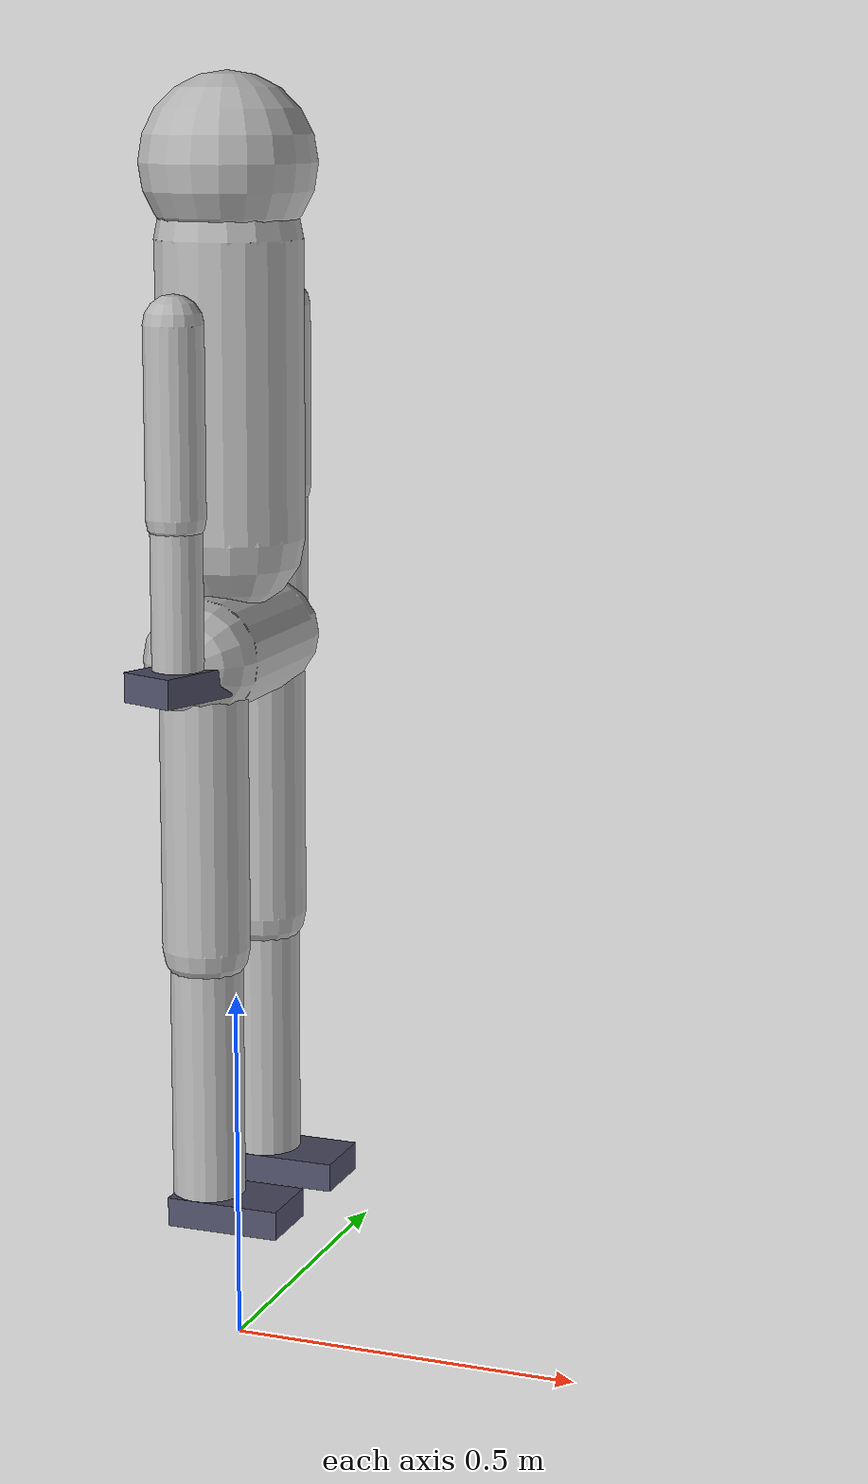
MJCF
<mujoco model="humanoid_simplified">
  <!-- 简化人形机器人模型 -->
  <!-- 适用于基本步态和平衡测试 -->

  <compiler angle="degree" coordinate="local" inertiafromgeom="true"/>

  <option timestep="0.001" gravity="0 0 -9.81" iterations="50"/>

  <asset>
    <!-- 人形机器人材质 -->
    <material name="robot_body" rgba="0.7 0.7 0.7 1"
              specular="0.4" shininess="0.2"/>
    <material name="robot_joint" rgba="0.3 0.3 0.4 1"
              specular="0.5" shininess="0.3"/>
  </asset>

  <worldbody>
    <!-- 人形机器人主体 -->
    <body name="pelvis" pos="0 0 1.0">
      <!-- 自由浮动基座 (6DOF) -->
      <freejoint name="root"/>

      <!-- 骨盆 -->
      <geom name="pelvis_geom" type="capsule" size="0.08"
            fromto="0 -0.1 0 0 0.1 0" material="robot_body" mass="5"/>

      <!-- 躯干 -->
      <body name="torso" pos="0 0 0.15">
        <joint name="torso_joint" type="hinge" axis="1 0 0"
               range="-30 30" damping="5" armature="0.1"/>
        <geom name="torso_geom" type="capsule" size="0.1"
              fromto="0 0 0 0 0 0.4" material="robot_body" mass="10"/>

        <!-- 头部 -->
        <body name="head" pos="0 0 0.5">
          <joint name="neck_joint" type="ball" damping="2" armature="0.05"/>
          <geom name="head_geom" type="sphere" size="0.12"
                material="robot_body" mass="3"/>

          <!-- 相机位置（传感器用） -->
          <site name="head_camera" pos="0.08 0 0" size="0.01"
                rgba="0 0 1 0.5"/>
        </body>

        <!-- 右臂 -->
        <body name="right_upper_arm" pos="0 -0.18 0.3" euler="0 0 -20">
          <joint name="right_shoulder" type="ball" damping="2" armature="0.05"/>
          <geom name="right_upper_arm_geom" type="capsule" size="0.04"
                fromto="0 0 0 0 0 -0.25" material="robot_body" mass="1.5"/>

          <!-- 右前臂 -->
          <body name="right_forearm" pos="0 0 -0.25">
            <joint name="right_elbow" type="hinge" axis="1 0 0"
                   range="0 150" damping="1" armature="0.03"/>
            <geom name="right_forearm_geom" type="capsule" size="0.035"
                  fromto="0 0 0 0 0 -0.22" material="robot_body" mass="1"/>

            <!-- 右手 -->
            <body name="right_hand" pos="0 0 -0.22">
              <joint name="right_wrist" type="ball" damping="0.5" armature="0.01"/>
              <geom name="right_hand_geom" type="box" size="0.04 0.06 0.02"
                    material="robot_joint" mass="0.3"/>
            </body>
          </body>
        </body>

        <!-- 左臂 (镜像) -->
        <body name="left_upper_arm" pos="0 0.18 0.3" euler="0 0 20">
          <joint name="left_shoulder" type="ball" damping="2" armature="0.05"/>
          <geom name="left_upper_arm_geom" type="capsule" size="0.04"
                fromto="0 0 0 0 0 -0.25" material="robot_body" mass="1.5"/>

          <body name="left_forearm" pos="0 0 -0.25">
            <joint name="left_elbow" type="hinge" axis="1 0 0"
                   range="0 150" damping="1" armature="0.03"/>
            <geom name="left_forearm_geom" type="capsule" size="0.035"
                  fromto="0 0 0 0 0 -0.22" material="robot_body" mass="1"/>

            <body name="left_hand" pos="0 0 -0.22">
              <joint name="left_wrist" type="ball" damping="0.5" armature="0.01"/>
              <geom name="left_hand_geom" type="box" size="0.04 0.06 0.02"
                    material="robot_joint" mass="0.3"/>
            </body>
          </body>
        </body>
      </body>

      <!-- 右腿 -->
      <body name="right_thigh" pos="0 -0.1 -0.05">
        <joint name="right_hip" type="ball" damping="3" armature="0.08"/>
        <geom name="right_thigh_geom" type="capsule" size="0.06"
              fromto="0 0 0 0 0 -0.35" material="robot_body" mass="4"/>

        <!-- 右小腿 -->
        <body name="right_shin" pos="0 0 -0.35">
          <joint name="right_knee" type="hinge" axis="1 0 0"
                 range="-150 0" damping="2" armature="0.05"/>
          <geom name="right_shin_geom" type="capsule" size="0.05"
                fromto="0 0 0 0 0 -0.35" material="robot_body" mass="2.5"/>

          <!-- 右脚 -->
          <body name="right_foot" pos="0 0 -0.35">
            <joint name="right_ankle" type="ball" damping="1" armature="0.03"/>
            <geom name="right_foot_geom" type="box" size="0.08 0.05 0.02"
                  pos="0.04 0 -0.02" material="robot_joint" mass="0.8"
                  friction="1.2 0.6 0.01"/>

            <!-- 脚底传感器位置 -->
            <site name="right_foot_sensor" pos="0.04 0 -0.04"
                  size="0.01" rgba="1 0 0 0.5"/>
          </body>
        </body>
      </body>

      <!-- 左腿 (镜像) -->
      <body name="left_thigh" pos="0 0.1 -0.05">
        <joint name="left_hip" type="ball" damping="3" armature="0.08"/>
        <geom name="left_thigh_geom" type="capsule" size="0.06"
              fromto="0 0 0 0 0 -0.35" material="robot_body" mass="4"/>

        <body name="left_shin" pos="0 0 -0.35">
          <joint name="left_knee" type="hinge" axis="1 0 0"
                 range="-150 0" damping="2" armature="0.05"/>
          <geom name="left_shin_geom" type="capsule" size="0.05"
                fromto="0 0 0 0 0 -0.35" material="robot_body" mass="2.5"/>

          <body name="left_foot" pos="0 0 -0.35">
            <joint name="left_ankle" type="ball" damping="1" armature="0.03"/>
            <geom name="left_foot_geom" type="box" size="0.08 0.05 0.02"
                  pos="0.04 0 -0.02" material="robot_joint" mass="0.8"
                  friction="1.2 0.6 0.01"/>

            <site name="left_foot_sensor" pos="0.04 0 -0.04"
                  size="0.01" rgba="1 0 0 0.5"/>
          </body>
        </body>
      </body>
    </body>
  </worldbody>

  <!-- 执行器配置 -->
  <actuator>
    <!-- 躯干控制 -->
    <motor name="torso" joint="torso_joint" gear="100"
           ctrllimited="true" ctrlrange="-1 1"/>

    <!-- 右腿执行器 -->
    <motor name="right_hip_x" joint="right_hip" gear="120"
           ctrllimited="true" ctrlrange="-1 1"/>
    <motor name="right_knee" joint="right_knee" gear="100"
           ctrllimited="true" ctrlrange="-1 1"/>
    <motor name="right_ankle" joint="right_ankle" gear="80"
           ctrllimited="true" ctrlrange="-1 1"/>

    <!-- 左腿执行器 -->
    <motor name="left_hip_x" joint="left_hip" gear="120"
           ctrllimited="true" ctrlrange="-1 1"/>
    <motor name="left_knee" joint="left_knee" gear="100"
           ctrllimited="true" ctrlrange="-1 1"/>
    <motor name="left_ankle" joint="left_ankle" gear="80"
           ctrllimited="true" ctrlrange="-1 1"/>

    <!-- 右臂执行器 -->
    <motor name="right_shoulder" joint="right_shoulder" gear="80"
           ctrllimited="true" ctrlrange="-1 1"/>
    <motor name="right_elbow" joint="right_elbow" gear="60"
           ctrllimited="true" ctrlrange="-1 1"/>
    <motor name="right_wrist" joint="right_wrist" gear="40"
           ctrllimited="true" ctrlrange="-1 1"/>

    <!-- 左臂执行器 -->
    <motor name="left_shoulder" joint="left_shoulder" gear="80"
           ctrllimited="true" ctrlrange="-1 1"/>
    <motor name="left_elbow" joint="left_elbow" gear="60"
           ctrllimited="true" ctrlrange="-1 1"/>
    <motor name="left_wrist" joint="left_wrist" gear="40"
           ctrllimited="true" ctrlrange="-1 1"/>

    <!-- 头部执行器 -->
    <motor name="neck" joint="neck_joint" gear="30"
           ctrllimited="true" ctrlrange="-1 1"/>
  </actuator>

  <!-- 传感器配置 -->
  <sensor>
    <!-- IMU (惯性测量单元) -->
    <accelerometer name="pelvis_accel" site="head_camera"/>
    <gyro name="pelvis_gyro" site="head_camera"/>
    <framequat name="pelvis_quat" objtype="body" objname="pelvis"/>

    <!-- 脚底力传感器 -->
    <force name="right_foot_force" site="right_foot_sensor"/>
    <force name="left_foot_force" site="left_foot_sensor"/>

    <!-- 关节位置传感器 -->
    <jointpos name="right_hip_pos" joint="right_hip"/>
    <jointpos name="right_knee_pos" joint="right_knee"/>
    <jointpos name="right_ankle_pos" joint="right_ankle"/>

    <jointpos name="left_hip_pos" joint="left_hip"/>
    <jointpos name="left_knee_pos" joint="left_knee"/>
    <jointpos name="left_ankle_pos" joint="left_ankle"/>

    <!-- 质心位置 -->
    <subtreecom name="torso_com" body="torso"/>
  </sensor>
</mujoco>
